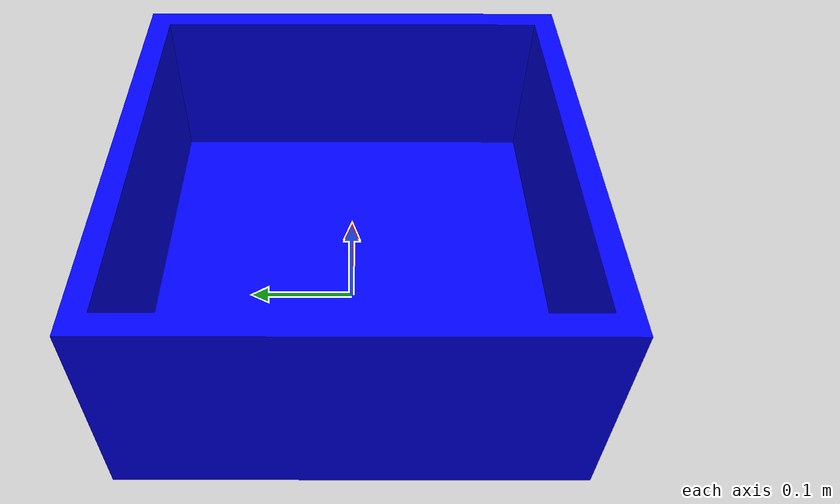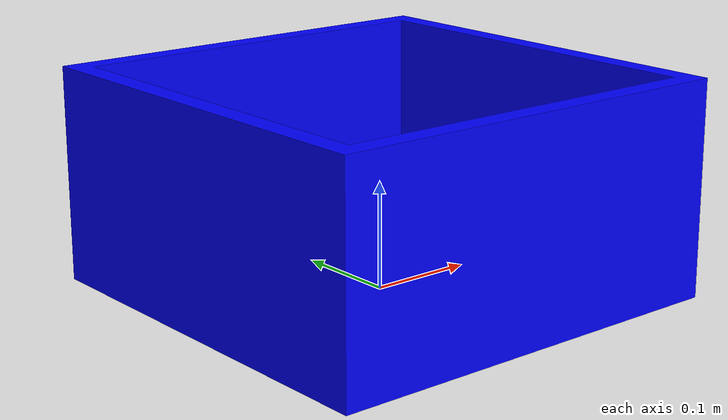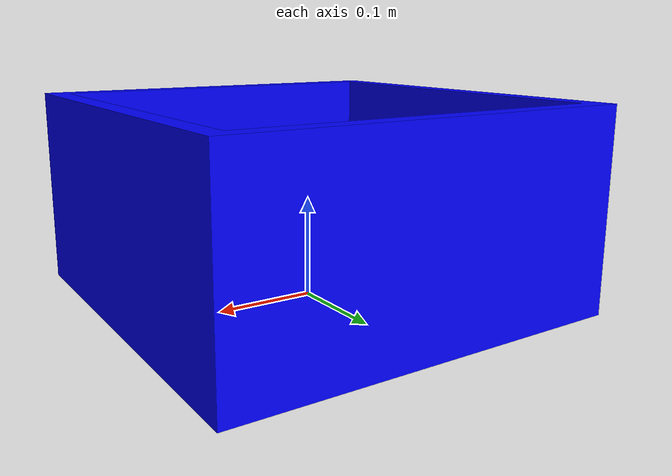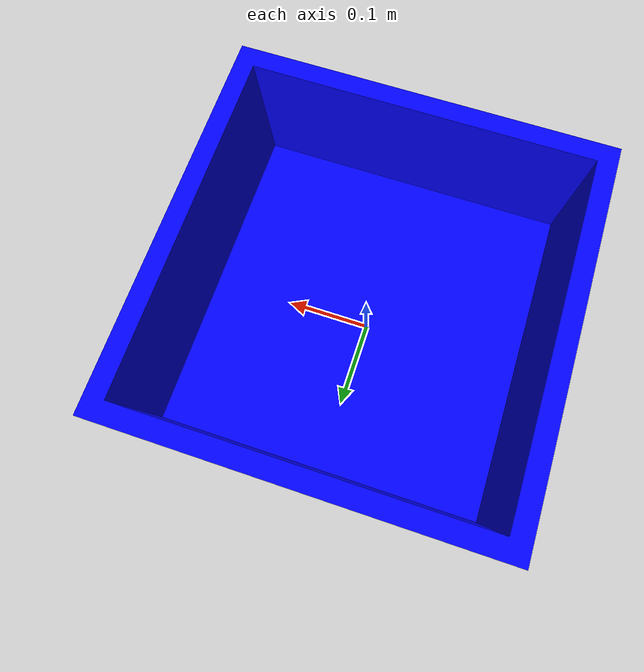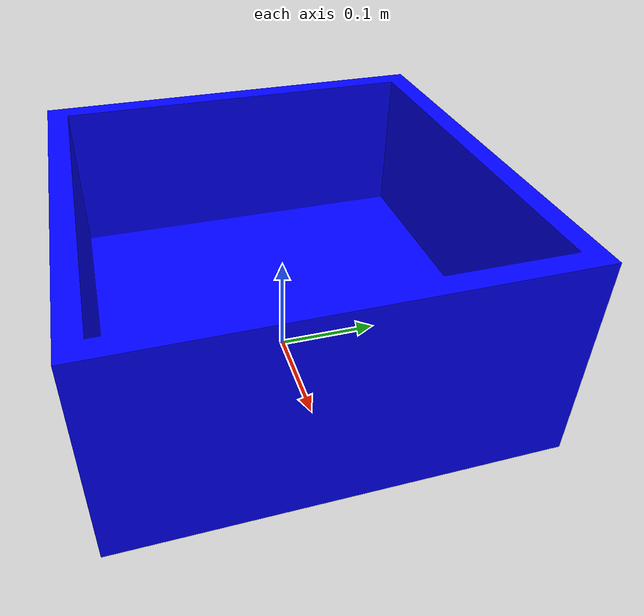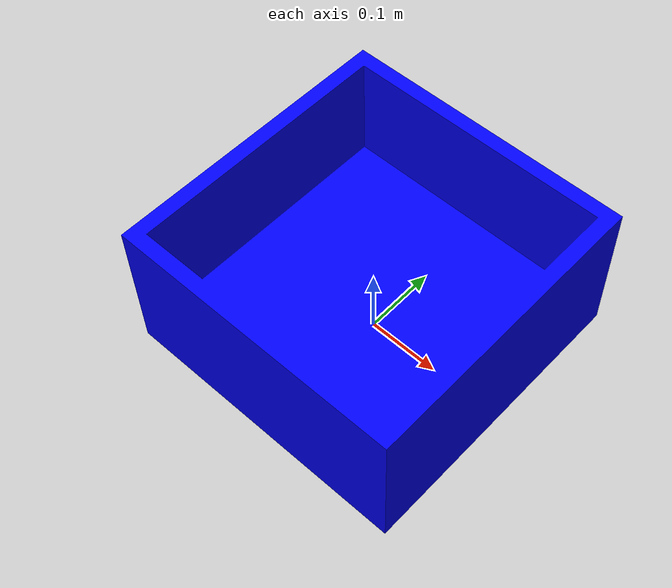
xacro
<?xml version="1.0"?>
<robot name='bin'>
        <material name="blue">
            <color rgba="0.0 0.0 1.0 1.0"/>
        </material>

        <link name="world_link"/>
        <joint name="bin_joint" type="fixed">
            <parent link="world_link"/>
            <child link="bin_link"/>
        </joint>

        <link name="bin_link">
            <inertial>
                <origin xyz="0.0 0.0 0.0" rpy="0.0 0.0 0.0"/>
                <mass value="6.614"/>
                <inertia ixx="0.098" ixy="0.0" ixz="0.0" iyy="0.098" iyz="0.0" izz="0.123"/>
            </inertial>
            <visual>
                <origin xyz="0.0 0.0 0.0" rpy="0.0 0.0 0.0"/>
                <geometry>
                    <mesh filename="package://pick_and_place/stl/bin.stl"/>
                </geometry>
                <material name="blue"/>
            </visual>
            <collision>
                <origin xyz="0.0 0.0 0.0" rpy="0.0 0.0 0.0"/>
                <geometry>
                    <mesh filename="package://pick_and_place/stl/bin.stl"/>
                </geometry>
            </collision>
        </link>

        <gazebo reference="bin_link">
            <mu1>10</mu1>
            <mu2>10</mu2>
            <material>Gazebo/Blue</material>
        </gazebo>
</robot>
